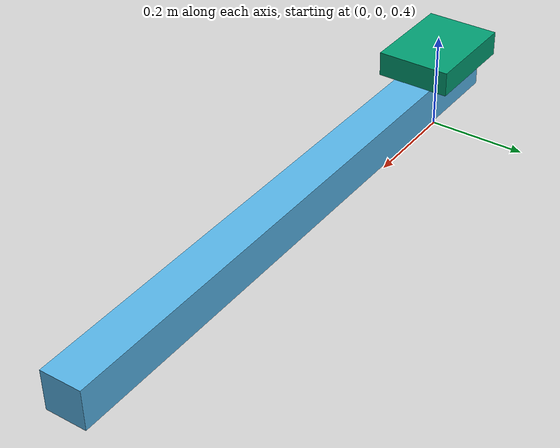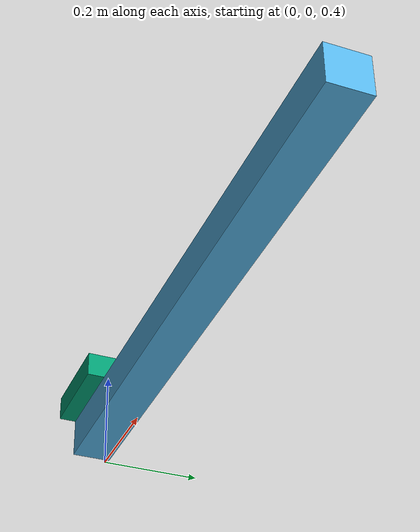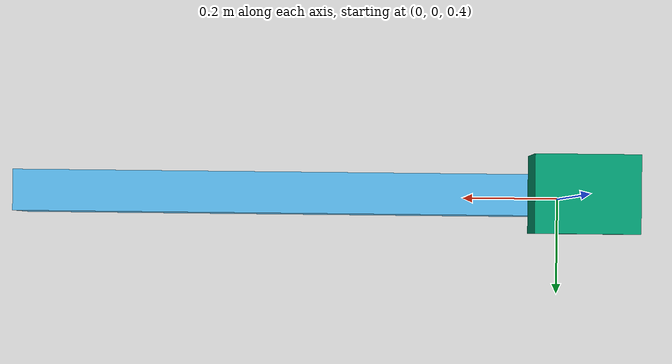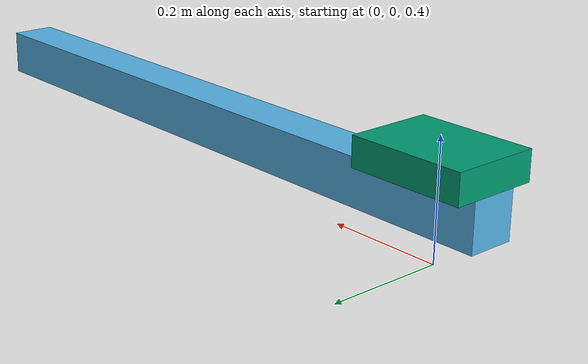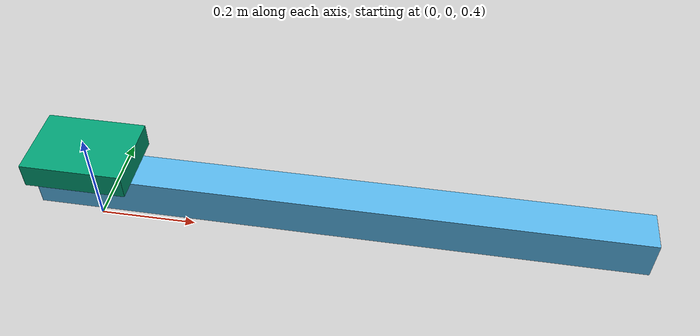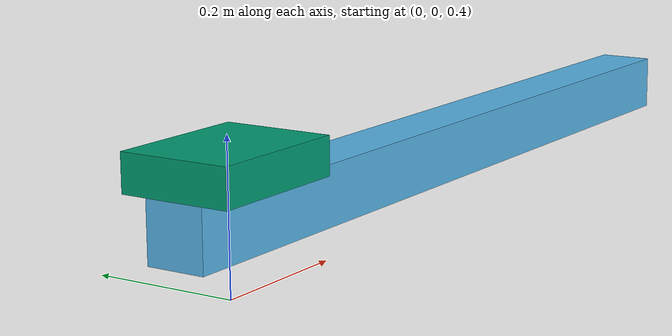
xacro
<?xml version="1.0"?>
<robot name="spike_axis" xmlns:xacro="http://www.ros.org/wiki/xacro">

  <xacro:arg name="controllers_file" default="$(find drone_line_sim)/config/spike_controllers.yaml"/>

  <!-- Rail: 1.2 m aluminium extrusion, 80x80 mm, ~5 kg -->
  <xacro:property name="rail_len" value="1.2"/>
  <xacro:property name="rail_w" value="0.08"/>
  <xacro:property name="rail_mass" value="5.0"/>
  <xacro:property name="rail_z" value="0.5"/>

  <!-- Cart: 200x150x50 mm, 2 kg -->
  <xacro:property name="cart_x" value="0.2"/>
  <xacro:property name="cart_y" value="0.15"/>
  <xacro:property name="cart_z" value="0.05"/>
  <xacro:property name="cart_mass" value="2.0"/>

  <!-- Joint -->
  <xacro:property name="axis_lower" value="-0.1"/>
  <xacro:property name="axis_upper" value="1.0"/>
  <xacro:property name="axis_effort" value="200.0"/>
  <xacro:property name="axis_velocity" value="1.0"/>
  <xacro:property name="axis_damping" value="5.0"/>
  <xacro:property name="axis_friction" value="0.5"/>

  <xacro:macro name="box_inertial" params="m x y z">
    <inertial>
      <origin xyz="0 0 0" rpy="0 0 0"/>
      <mass value="${m}"/>
      <inertia ixx="${m / 12.0 * (y*y + z*z)}" ixy="0" ixz="0"
               iyy="${m / 12.0 * (x*x + z*z)}" iyz="0"
               izz="${m / 12.0 * (x*x + y*y)}"/>
    </inertial>
  </xacro:macro>

  <link name="world"/>

  <link name="rail">
    <visual>
      <origin xyz="${rail_len / 2 - 0.1} 0 0"/>
      <geometry><box size="${rail_len} ${rail_w} ${rail_w}"/></geometry>
    </visual>
    <xacro:box_inertial m="${rail_mass}" x="${rail_len}" y="${rail_w}" z="${rail_w}"/>
  </link>

  <joint name="rail_joint" type="fixed">
    <parent link="world"/>
    <child link="rail"/>
    <origin xyz="0 0 ${rail_z}" rpy="0 0 0"/>
  </joint>

  <link name="cart">
    <visual>
      <geometry><box size="${cart_x} ${cart_y} ${cart_z}"/></geometry>
    </visual>
    <collision>
      <geometry><box size="${cart_x} ${cart_y} ${cart_z}"/></geometry>
    </collision>
    <xacro:box_inertial m="${cart_mass}" x="${cart_x}" y="${cart_y}" z="${cart_z}"/>
  </link>

  <joint name="rail_to_cart" type="prismatic">
    <parent link="rail"/>
    <child link="cart"/>
    <origin xyz="0 0 ${rail_w / 2 + cart_z / 2}" rpy="0 0 0"/>
    <axis xyz="1 0 0"/>
    <limit lower="${axis_lower}" upper="${axis_upper}"
           effort="${axis_effort}" velocity="${axis_velocity}"/>
    <dynamics damping="${axis_damping}" friction="${axis_friction}"/>
  </joint>

  <ros2_control name="GazeboSimSystem" type="system">
    <hardware>
      <plugin>gz_ros2_control/GazeboSimSystem</plugin>
    </hardware>
    <joint name="rail_to_cart">
      <command_interface name="position"/>
      <state_interface name="position">
        <param name="initial_value">0.0</param>
      </state_interface>
      <state_interface name="velocity"/>
    </joint>
  </ros2_control>

  <!-- This plugin starts the controller manager. Without it (or with a bad parameters path)
       the controller manager never appears. -->
  <gazebo>
    <plugin filename="gz_ros2_control-system" name="gz_ros2_control::GazeboSimROS2ControlPlugin">
      <parameters>$(arg controllers_file)</parameters>
    </plugin>
  </gazebo>

</robot>
